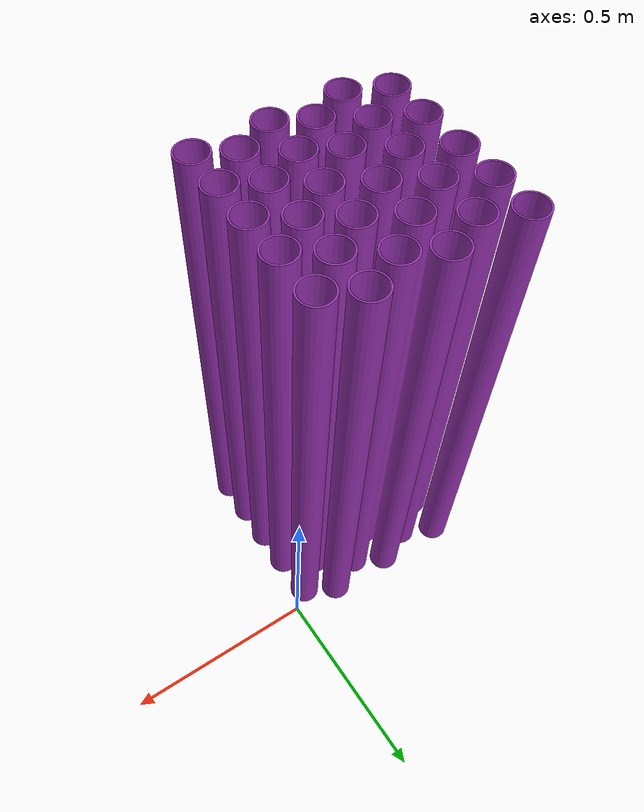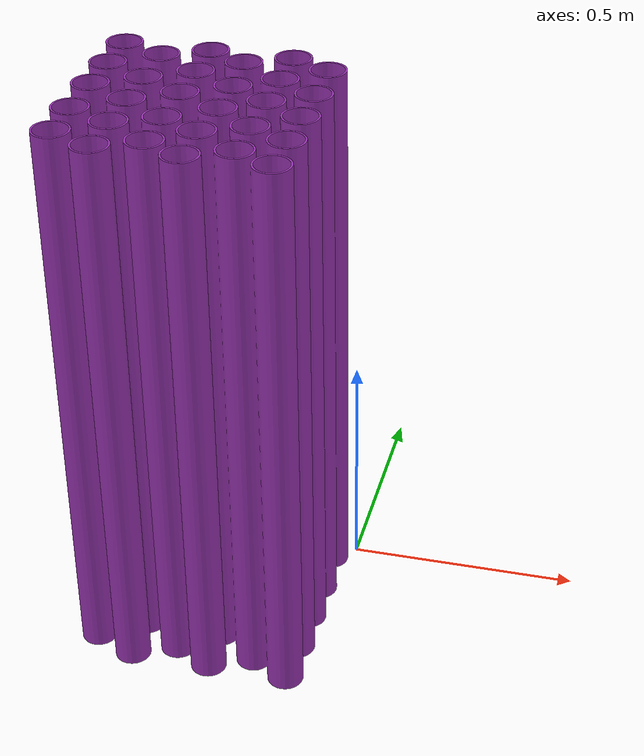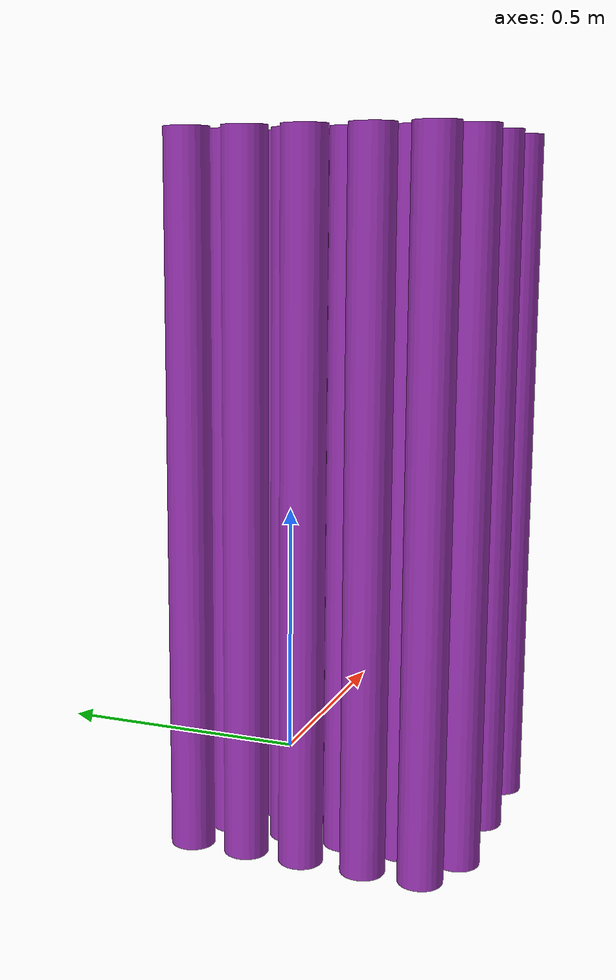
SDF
<?xml version="1.0" ?>
<sdf version="1.5">
  <model name="pipes">

    <pose>0 0 0  0 0 0</pose>

    <static>true</static>
    <link name="link">
      <inertial>
        <mass>97.976</mass>
        <inertia>
          <ixx>1</ixx>
          <ixy>0</ixy>
          <ixz>0</ixz>
          <iyy>1</iyy>
          <iyz>0</iyz>
          <izz>1</izz>
        </inertia>
      </inertial>

      <collision name="collision">
	    <pose>0 0 0  0 0 0</pose>
        <geometry>
          <mesh>
            <uri>model://pipes/meshes/pipes.stl</uri>
          </mesh>
        </geometry>
      </collision>

      <visual name="visual">
        <geometry>
          <mesh>
            <uri>model://pipes/meshes/pipes.stl</uri>
          </mesh>
        </geometry>
        <material>
           <script>
  <name>Gazebo/Purple</name>
  </script>
        </material>
      </visual>
    </link>
  </model>
</sdf>
